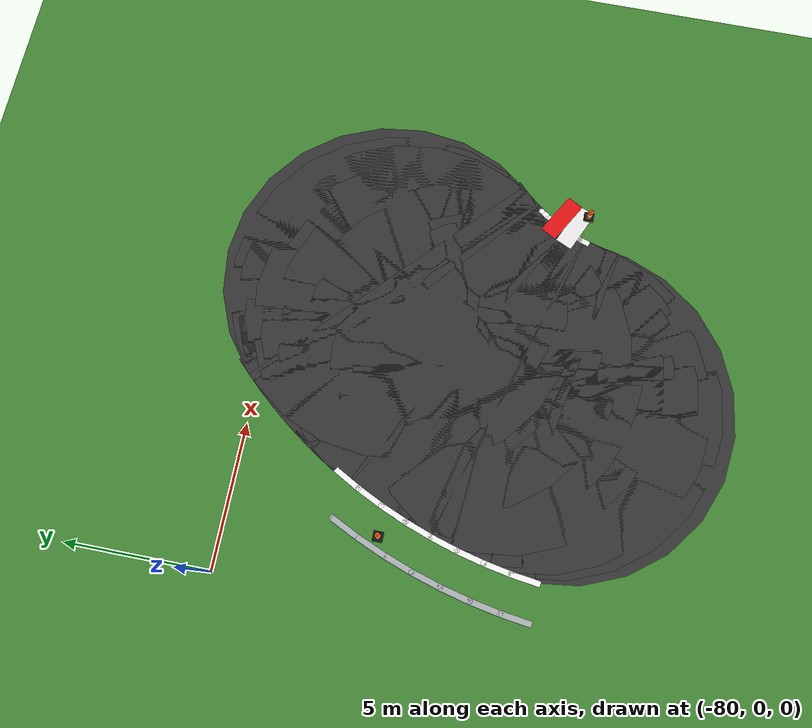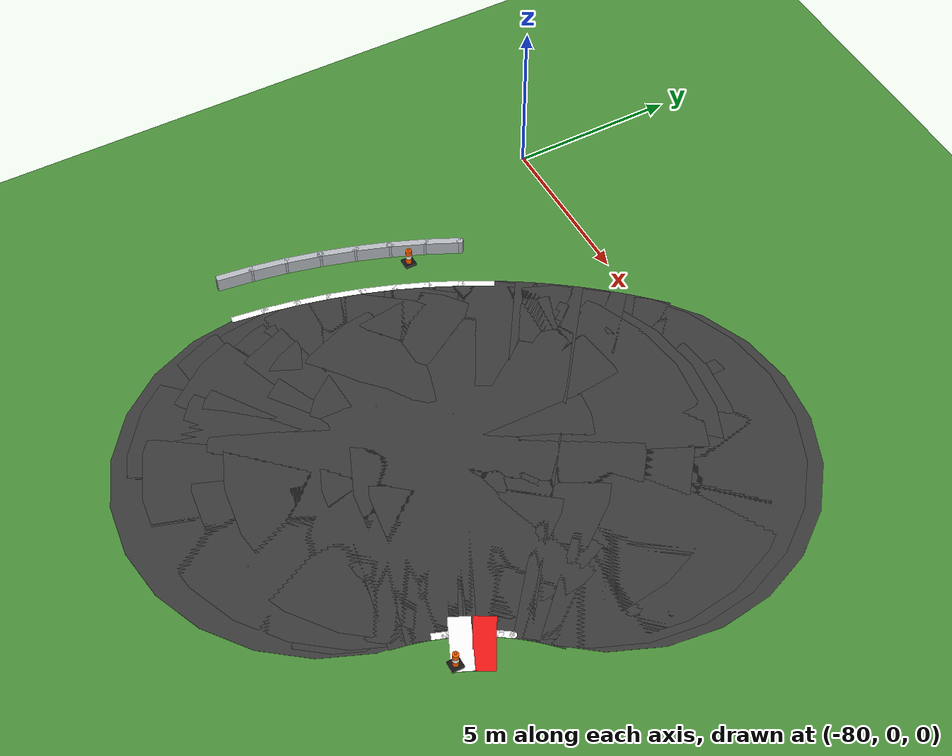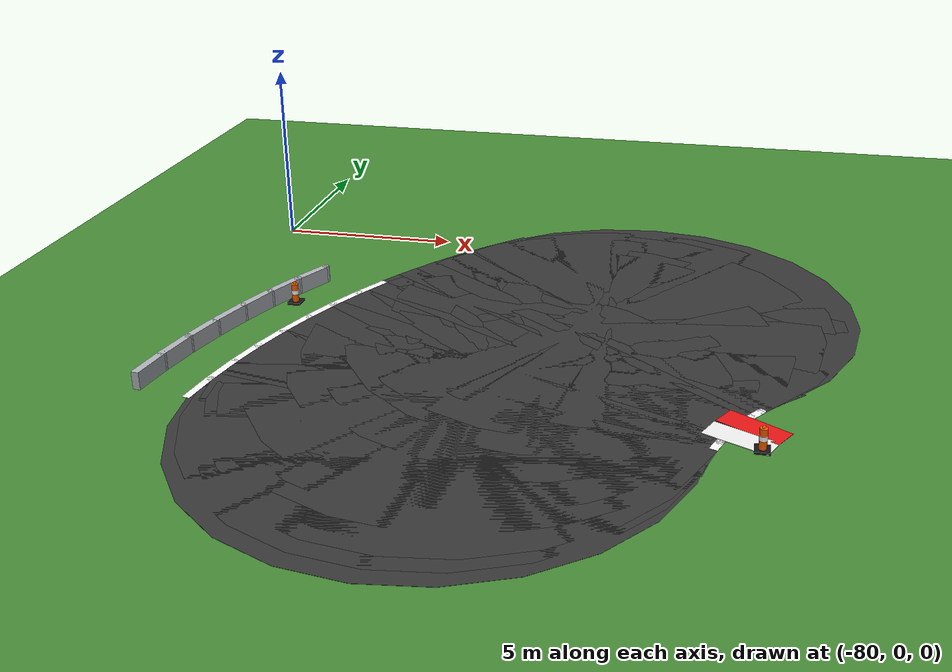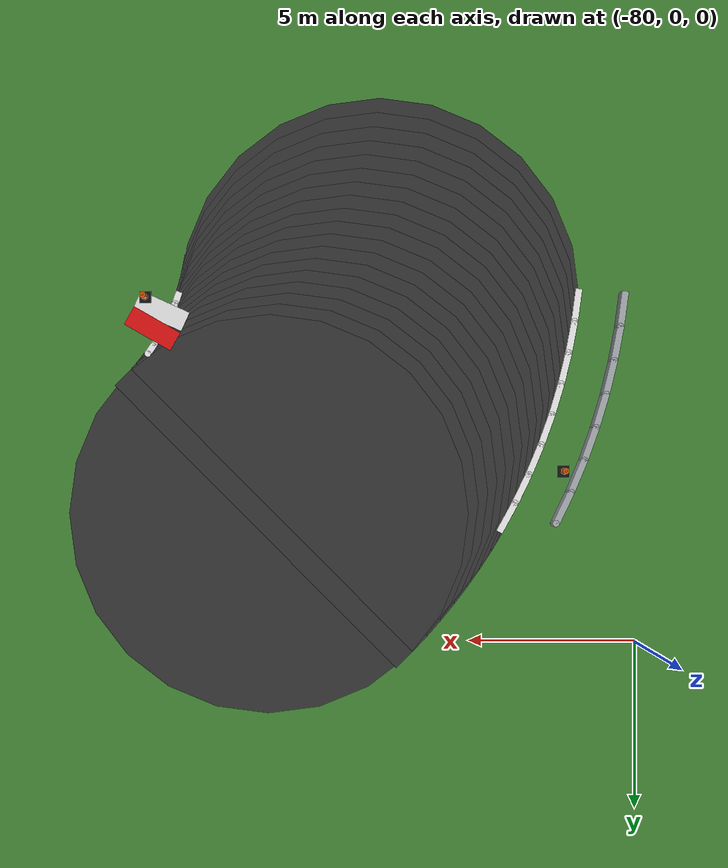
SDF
<sdf version="1.6">
 <world name="sem_silesia_ring_2026">
  <model name="ground_plane">
   <static>true</static>
   <link name="link">
    <collision name="collision">
     <geometry><plane><normal>0 0 1</normal><size>600 600</size></plane></geometry>
     <surface><friction><ode><mu>0.6</mu><mu2>0.6</mu2></ode></friction></surface>
    </collision>
    <visual name="visual">
     <geometry><plane><normal>0 0 1</normal><size>600 600</size></plane></geometry>
     <material><ambient>0.28 0.55 0.22 1</ambient><diffuse>0.28 0.55 0.22 1</diffuse></material>
    </visual>
   </link>
  </model>
  <model name="road_L_s22">
   <static>true</static>
   <pose>-68.8388 -3.6612 0.0030 0 0 3.9270</pose>
   <link name="link">
    <visual name="v">
     <geometry><box><size>0.6957 12.0000 0.0060</size></box></geometry>
     <material><ambient>0.22 0.22 0.22 1</ambient><diffuse>0.22 0.22 0.22 1</diffuse></material>
    </visual>
    <collision name="c">
     <geometry><box><size>0.6957 12.0000 0.0060</size></box></geometry>
     <surface><friction><ode><mu>0.9</mu><mu2>0.9</mu2></ode></friction></surface>
    </collision>
   </link>
  </model>
  <model name="road_L_jnt23">
   <static>true</static>
   <pose>-68.9917 -3.8168 0.0030 0 0 0</pose>
   <link name="link">
    <visual name="v">
     <geometry><cylinder><radius>6.0000</radius><length>0.0060</length></cylinder></geometry>
     <material><ambient>0.22 0.22 0.22 1</ambient><diffuse>0.22 0.22 0.22 1</diffuse></material>
    </visual>
    <collision name="c">
     <geometry><cylinder><radius>6.0000</radius><length>0.0060</length></cylinder></geometry>
     <surface><friction><ode><mu>0.9</mu><mu2>0.9</mu2></ode></friction></surface>
    </collision>
   </link>
  </model>
  <model name="road_L_s23">
   <static>true</static>
   <pose>-69.1419 -3.9750 0.0030 0 0 3.9619</pose>
   <link name="link">
    <visual name="v">
     <geometry><box><size>0.6957 12.0000 0.0060</size></box></geometry>
     <material><ambient>0.22 0.22 0.22 1</ambient><diffuse>0.22 0.22 0.22 1</diffuse></material>
    </visual>
    <collision name="c">
     <geometry><box><size>0.6957 12.0000 0.0060</size></box></geometry>
     <surface><friction><ode><mu>0.9</mu><mu2>0.9</mu2></ode></friction></surface>
    </collision>
   </link>
  </model>
  <model name="road_L_jnt24">
   <static>true</static>
   <pose>-69.2893 -4.1359 0.0030 0 0 0</pose>
   <link name="link">
    <visual name="v">
     <geometry><cylinder><radius>6.0000</radius><length>0.0060</length></cylinder></geometry>
     <material><ambient>0.22 0.22 0.22 1</ambient><diffuse>0.22 0.22 0.22 1</diffuse></material>
    </visual>
    <collision name="c">
     <geometry><cylinder><radius>6.0000</radius><length>0.0060</length></cylinder></geometry>
     <surface><friction><ode><mu>0.9</mu><mu2>0.9</mu2></ode></friction></surface>
    </collision>
   </link>
  </model>
  <model name="road_L_s24">
   <static>true</static>
   <pose>-69.4339 -4.2993 0.0030 0 0 3.9968</pose>
   <link name="link">
    <visual name="v">
     <geometry><box><size>0.6957 12.0000 0.0060</size></box></geometry>
     <material><ambient>0.22 0.22 0.22 1</ambient><diffuse>0.22 0.22 0.22 1</diffuse></material>
    </visual>
    <collision name="c">
     <geometry><box><size>0.6957 12.0000 0.0060</size></box></geometry>
     <surface><friction><ode><mu>0.9</mu><mu2>0.9</mu2></ode></friction></surface>
    </collision>
   </link>
  </model>
  <model name="road_L_jnt25">
   <static>true</static>
   <pose>-69.5756 -4.4652 0.0030 0 0 0</pose>
   <link name="link">
    <visual name="v">
     <geometry><cylinder><radius>6.0000</radius><length>0.0060</length></cylinder></geometry>
     <material><ambient>0.22 0.22 0.22 1</ambient><diffuse>0.22 0.22 0.22 1</diffuse></material>
    </visual>
    <collision name="c">
     <geometry><cylinder><radius>6.0000</radius><length>0.0060</length></cylinder></geometry>
     <surface><friction><ode><mu>0.9</mu><mu2>0.9</mu2></ode></friction></surface>
    </collision>
   </link>
  </model>
  <model name="road_L_s25">
   <static>true</static>
   <pose>-69.7143 -4.6335 0.0030 0 0 4.0317</pose>
   <link name="link">
    <visual name="v">
     <geometry><box><size>0.6957 12.0000 0.0060</size></box></geometry>
     <material><ambient>0.22 0.22 0.22 1</ambient><diffuse>0.22 0.22 0.22 1</diffuse></material>
    </visual>
    <collision name="c">
     <geometry><box><size>0.6957 12.0000 0.0060</size></box></geometry>
     <surface><friction><ode><mu>0.9</mu><mu2>0.9</mu2></ode></friction></surface>
    </collision>
   </link>
  </model>
  <model name="road_L_jnt26">
   <static>true</static>
   <pose>-69.8501 -4.8042 0.0030 0 0 0</pose>
   <link name="link">
    <visual name="v">
     <geometry><cylinder><radius>6.0000</radius><length>0.0060</length></cylinder></geometry>
     <material><ambient>0.22 0.22 0.22 1</ambient><diffuse>0.22 0.22 0.22 1</diffuse></material>
    </visual>
    <collision name="c">
     <geometry><cylinder><radius>6.0000</radius><length>0.0060</length></cylinder></geometry>
     <surface><friction><ode><mu>0.9</mu><mu2>0.9</mu2></ode></friction></surface>
    </collision>
   </link>
  </model>
  <model name="road_L_s26">
   <static>true</static>
   <pose>-69.9829 -4.9773 0.0030 0 0 4.0666</pose>
   <link name="link">
    <visual name="v">
     <geometry><box><size>0.6957 12.0000 0.0060</size></box></geometry>
     <material><ambient>0.22 0.22 0.22 1</ambient><diffuse>0.22 0.22 0.22 1</diffuse></material>
    </visual>
    <collision name="c">
     <geometry><box><size>0.6957 12.0000 0.0060</size></box></geometry>
     <surface><friction><ode><mu>0.9</mu><mu2>0.9</mu2></ode></friction></surface>
    </collision>
   </link>
  </model>
  <model name="road_L_jnt27">
   <static>true</static>
   <pose>-70.1127 -5.1527 0.0030 0 0 0</pose>
   <link name="link">
    <visual name="v">
     <geometry><cylinder><radius>6.0000</radius><length>0.0060</length></cylinder></geometry>
     <material><ambient>0.22 0.22 0.22 1</ambient><diffuse>0.22 0.22 0.22 1</diffuse></material>
    </visual>
    <collision name="c">
     <geometry><cylinder><radius>6.0000</radius><length>0.0060</length></cylinder></geometry>
     <surface><friction><ode><mu>0.9</mu><mu2>0.9</mu2></ode></friction></surface>
    </collision>
   </link>
  </model>
  <model name="road_L_s27">
   <static>true</static>
   <pose>-70.2394 -5.3303 0.0030 0 0 4.1015</pose>
   <link name="link">
    <visual name="v">
     <geometry><box><size>0.6957 12.0000 0.0060</size></box></geometry>
     <material><ambient>0.22 0.22 0.22 1</ambient><diffuse>0.22 0.22 0.22 1</diffuse></material>
    </visual>
    <collision name="c">
     <geometry><box><size>0.6957 12.0000 0.0060</size></box></geometry>
     <surface><friction><ode><mu>0.9</mu><mu2>0.9</mu2></ode></friction></surface>
    </collision>
   </link>
  </model>
  <model name="road_L_jnt28">
   <static>true</static>
   <pose>-70.3630 -5.5101 0.0030 0 0 0</pose>
   <link name="link">
    <visual name="v">
     <geometry><cylinder><radius>6.0000</radius><length>0.0060</length></cylinder></geometry>
     <material><ambient>0.22 0.22 0.22 1</ambient><diffuse>0.22 0.22 0.22 1</diffuse></material>
    </visual>
    <collision name="c">
     <geometry><cylinder><radius>6.0000</radius><length>0.0060</length></cylinder></geometry>
     <surface><friction><ode><mu>0.9</mu><mu2>0.9</mu2></ode></friction></surface>
    </collision>
   </link>
  </model>
  <model name="road_L_s28">
   <static>true</static>
   <pose>-70.4834 -5.6920 0.0030 0 0 4.1364</pose>
   <link name="link">
    <visual name="v">
     <geometry><box><size>0.6957 12.0000 0.0060</size></box></geometry>
     <material><ambient>0.22 0.22 0.22 1</ambient><diffuse>0.22 0.22 0.22 1</diffuse></material>
    </visual>
    <collision name="c">
     <geometry><box><size>0.6957 12.0000 0.0060</size></box></geometry>
     <surface><friction><ode><mu>0.9</mu><mu2>0.9</mu2></ode></friction></surface>
    </collision>
   </link>
  </model>
  <model name="road_L_jnt29">
   <static>true</static>
   <pose>-70.6006 -5.8760 0.0030 0 0 0</pose>
   <link name="link">
    <visual name="v">
     <geometry><cylinder><radius>6.0000</radius><length>0.0060</length></cylinder></geometry>
     <material><ambient>0.22 0.22 0.22 1</ambient><diffuse>0.22 0.22 0.22 1</diffuse></material>
    </visual>
    <collision name="c">
     <geometry><cylinder><radius>6.0000</radius><length>0.0060</length></cylinder></geometry>
     <surface><friction><ode><mu>0.9</mu><mu2>0.9</mu2></ode></friction></surface>
    </collision>
   </link>
  </model>
  <model name="road_L_s29">
   <static>true</static>
   <pose>-70.7146 -6.0620 0.0030 0 0 4.1713</pose>
   <link name="link">
    <visual name="v">
     <geometry><box><size>0.6957 12.0000 0.0060</size></box></geometry>
     <material><ambient>0.22 0.22 0.22 1</ambient><diffuse>0.22 0.22 0.22 1</diffuse></material>
    </visual>
    <collision name="c">
     <geometry><box><size>0.6957 12.0000 0.0060</size></box></geometry>
     <surface><friction><ode><mu>0.9</mu><mu2>0.9</mu2></ode></friction></surface>
    </collision>
   </link>
  </model>
  <model name="road_L_jnt30">
   <static>true</static>
   <pose>-70.8253 -6.2500 0.0030 0 0 0</pose>
   <link name="link">
    <visual name="v">
     <geometry><cylinder><radius>6.0000</radius><length>0.0060</length></cylinder></geometry>
     <material><ambient>0.22 0.22 0.22 1</ambient><diffuse>0.22 0.22 0.22 1</diffuse></material>
    </visual>
    <collision name="c">
     <geometry><cylinder><radius>6.0000</radius><length>0.0060</length></cylinder></geometry>
     <surface><friction><ode><mu>0.9</mu><mu2>0.9</mu2></ode></friction></surface>
    </collision>
   </link>
  </model>
  <model name="road_L_s30">
   <static>true</static>
   <pose>-70.9327 -6.4399 0.0030 0 0 4.2062</pose>
   <link name="link">
    <visual name="v">
     <geometry><box><size>0.6957 12.0000 0.0060</size></box></geometry>
     <material><ambient>0.22 0.22 0.22 1</ambient><diffuse>0.22 0.22 0.22 1</diffuse></material>
    </visual>
    <collision name="c">
     <geometry><box><size>0.6957 12.0000 0.0060</size></box></geometry>
     <surface><friction><ode><mu>0.9</mu><mu2>0.9</mu2></ode></friction></surface>
    </collision>
   </link>
  </model>
  <model name="road_L_jnt31">
   <static>true</static>
   <pose>-71.0368 -6.6316 0.0030 0 0 0</pose>
   <link name="link">
    <visual name="v">
     <geometry><cylinder><radius>6.0000</radius><length>0.0060</length></cylinder></geometry>
     <material><ambient>0.22 0.22 0.22 1</ambient><diffuse>0.22 0.22 0.22 1</diffuse></material>
    </visual>
    <collision name="c">
     <geometry><cylinder><radius>6.0000</radius><length>0.0060</length></cylinder></geometry>
     <surface><friction><ode><mu>0.9</mu><mu2>0.9</mu2></ode></friction></surface>
    </collision>
   </link>
  </model>
  <model name="road_L_s31">
   <static>true</static>
   <pose>-71.1376 -6.8251 0.0030 0 0 4.2412</pose>
   <link name="link">
    <visual name="v">
     <geometry><box><size>0.6957 12.0000 0.0060</size></box></geometry>
     <material><ambient>0.22 0.22 0.22 1</ambient><diffuse>0.22 0.22 0.22 1</diffuse></material>
    </visual>
    <collision name="c">
     <geometry><box><size>0.6957 12.0000 0.0060</size></box></geometry>
     <surface><friction><ode><mu>0.9</mu><mu2>0.9</mu2></ode></friction></surface>
    </collision>
   </link>
  </model>
  <model name="road_L_jnt32">
   <static>true</static>
   <pose>-71.2349 -7.0204 0.0030 0 0 0</pose>
   <link name="link">
    <visual name="v">
     <geometry><cylinder><radius>6.0000</radius><length>0.0060</length></cylinder></geometry>
     <material><ambient>0.22 0.22 0.22 1</ambient><diffuse>0.22 0.22 0.22 1</diffuse></material>
    </visual>
    <collision name="c">
     <geometry><cylinder><radius>6.0000</radius><length>0.0060</length></cylinder></geometry>
     <surface><friction><ode><mu>0.9</mu><mu2>0.9</mu2></ode></friction></surface>
    </collision>
   </link>
  </model>
  <model name="road_L_s32">
   <static>true</static>
   <pose>-71.3288 -7.2173 0.0030 0 0 4.2761</pose>
   <link name="link">
    <visual name="v">
     <geometry><box><size>0.6957 12.0000 0.0060</size></box></geometry>
     <material><ambient>0.22 0.22 0.22 1</ambient><diffuse>0.22 0.22 0.22 1</diffuse></material>
    </visual>
    <collision name="c">
     <geometry><box><size>0.6957 12.0000 0.0060</size></box></geometry>
     <surface><friction><ode><mu>0.9</mu><mu2>0.9</mu2></ode></friction></surface>
    </collision>
   </link>
  </model>
  <model name="road_L_jnt33">
   <static>true</static>
   <pose>-71.4193 -7.4158 0.0030 0 0 0</pose>
   <link name="link">
    <visual name="v">
     <geometry><cylinder><radius>6.0000</radius><length>0.0060</length></cylinder></geometry>
     <material><ambient>0.22 0.22 0.22 1</ambient><diffuse>0.22 0.22 0.22 1</diffuse></material>
    </visual>
    <collision name="c">
     <geometry><cylinder><radius>6.0000</radius><length>0.0060</length></cylinder></geometry>
     <surface><friction><ode><mu>0.9</mu><mu2>0.9</mu2></ode></friction></surface>
    </collision>
   </link>
  </model>
  <model name="road_L_s33">
   <static>true</static>
   <pose>-71.5063 -7.6159 0.0030 0 0 4.3110</pose>
   <link name="link">
    <visual name="v">
     <geometry><box><size>0.6957 12.0000 0.0060</size></box></geometry>
     <material><ambient>0.22 0.22 0.22 1</ambient><diffuse>0.22 0.22 0.22 1</diffuse></material>
    </visual>
    <collision name="c">
     <geometry><box><size>0.6957 12.0000 0.0060</size></box></geometry>
     <surface><friction><ode><mu>0.9</mu><mu2>0.9</mu2></ode></friction></surface>
    </collision>
   </link>
  </model>
  <model name="road_L_jnt34">
   <static>true</static>
   <pose>-71.5898 -7.8174 0.0030 0 0 0</pose>
   <link name="link">
    <visual name="v">
     <geometry><cylinder><radius>6.0000</radius><length>0.0060</length></cylinder></geometry>
     <material><ambient>0.22 0.22 0.22 1</ambient><diffuse>0.22 0.22 0.22 1</diffuse></material>
    </visual>
    <collision name="c">
     <geometry><cylinder><radius>6.0000</radius><length>0.0060</length></cylinder></geometry>
     <surface><friction><ode><mu>0.9</mu><mu2>0.9</mu2></ode></friction></surface>
    </collision>
   </link>
  </model>
  <model name="road_L_s34">
   <static>true</static>
   <pose>-71.6698 -8.0204 0.0030 0 0 4.3459</pose>
   <link name="link">
    <visual name="v">
     <geometry><box><size>0.6957 12.0000 0.0060</size></box></geometry>
     <material><ambient>0.22 0.22 0.22 1</ambient><diffuse>0.22 0.22 0.22 1</diffuse></material>
    </visual>
    <collision name="c">
     <geometry><box><size>0.6957 12.0000 0.0060</size></box></geometry>
     <surface><friction><ode><mu>0.9</mu><mu2>0.9</mu2></ode></friction></surface>
    </collision>
   </link>
  </model>
  <model name="road_L_jnt35">
   <static>true</static>
   <pose>-71.7462 -8.2247 0.0030 0 0 0</pose>
   <link name="link">
    <visual name="v">
     <geometry><cylinder><radius>6.0000</radius><length>0.0060</length></cylinder></geometry>
     <material><ambient>0.22 0.22 0.22 1</ambient><diffuse>0.22 0.22 0.22 1</diffuse></material>
    </visual>
    <collision name="c">
     <geometry><cylinder><radius>6.0000</radius><length>0.0060</length></cylinder></geometry>
     <surface><friction><ode><mu>0.9</mu><mu2>0.9</mu2></ode></friction></surface>
    </collision>
   </link>
  </model>
  <model name="road_L_s35">
   <static>true</static>
   <pose>-71.8190 -8.4304 0.0030 0 0 4.3808</pose>
   <link name="link">
    <visual name="v">
     <geometry><box><size>0.6957 12.0000 0.0060</size></box></geometry>
     <material><ambient>0.22 0.22 0.22 1</ambient><diffuse>0.22 0.22 0.22 1</diffuse></material>
    </visual>
    <collision name="c">
     <geometry><box><size>0.6957 12.0000 0.0060</size></box></geometry>
     <surface><friction><ode><mu>0.9</mu><mu2>0.9</mu2></ode></friction></surface>
    </collision>
   </link>
  </model>
  <model name="road_L_jnt36">
   <static>true</static>
   <pose>-71.8882 -8.6373 0.0030 0 0 0</pose>
   <link name="link">
    <visual name="v">
     <geometry><cylinder><radius>6.0000</radius><length>0.0060</length></cylinder></geometry>
     <material><ambient>0.22 0.22 0.22 1</ambient><diffuse>0.22 0.22 0.22 1</diffuse></material>
    </visual>
    <collision name="c">
     <geometry><cylinder><radius>6.0000</radius><length>0.0060</length></cylinder></geometry>
     <surface><friction><ode><mu>0.9</mu><mu2>0.9</mu2></ode></friction></surface>
    </collision>
   </link>
  </model>
  <model name="road_L_s36">
   <static>true</static>
   <pose>-71.9538 -8.8454 0.0030 0 0 4.4157</pose>
   <link name="link">
    <visual name="v">
     <geometry><box><size>0.6957 12.0000 0.0060</size></box></geometry>
     <material><ambient>0.22 0.22 0.22 1</ambient><diffuse>0.22 0.22 0.22 1</diffuse></material>
    </visual>
    <collision name="c">
     <geometry><box><size>0.6957 12.0000 0.0060</size></box></geometry>
     <surface><friction><ode><mu>0.9</mu><mu2>0.9</mu2></ode></friction></surface>
    </collision>
   </link>
  </model>
  <model name="road_L_jnt37">
   <static>true</static>
   <pose>-72.0158 -9.0545 0.0030 0 0 0</pose>
   <link name="link">
    <visual name="v">
     <geometry><cylinder><radius>6.0000</radius><length>0.0060</length></cylinder></geometry>
     <material><ambient>0.22 0.22 0.22 1</ambient><diffuse>0.22 0.22 0.22 1</diffuse></material>
    </visual>
    <collision name="c">
     <geometry><cylinder><radius>6.0000</radius><length>0.0060</length></cylinder></geometry>
     <surface><friction><ode><mu>0.9</mu><mu2>0.9</mu2></ode></friction></surface>
    </collision>
   </link>
  </model>
  <model name="road_L_s37">
   <static>true</static>
   <pose>-72.0741 -9.2648 0.0030 0 0 4.4506</pose>
   <link name="link">
    <visual name="v">
     <geometry><box><size>0.6957 12.0000 0.0060</size></box></geometry>
     <material><ambient>0.22 0.22 0.22 1</ambient><diffuse>0.22 0.22 0.22 1</diffuse></material>
    </visual>
    <collision name="c">
     <geometry><box><size>0.6957 12.0000 0.0060</size></box></geometry>
     <surface><friction><ode><mu>0.9</mu><mu2>0.9</mu2></ode></friction></surface>
    </collision>
   </link>
  </model>
  <model name="road_L_jnt38">
   <static>true</static>
   <pose>-72.1287 -9.4760 0.0030 0 0 0</pose>
   <link name="link">
    <visual name="v">
     <geometry><cylinder><radius>6.0000</radius><length>0.0060</length></cylinder></geometry>
     <material><ambient>0.22 0.22 0.22 1</ambient><diffuse>0.22 0.22 0.22 1</diffuse></material>
    </visual>
    <collision name="c">
     <geometry><cylinder><radius>6.0000</radius><length>0.0060</length></cylinder></geometry>
     <surface><friction><ode><mu>0.9</mu><mu2>0.9</mu2></ode></friction></surface>
    </collision>
   </link>
  </model>
  <model name="road_L_s38">
   <static>true</static>
   <pose>-72.1796 -9.6881 0.0030 0 0 4.4855</pose>
   <link name="link">
    <visual name="v">
     <geometry><box><size>0.6957 12.0000 0.0060</size></box></geometry>
     <material><ambient>0.22 0.22 0.22 1</ambient><diffuse>0.22 0.22 0.22 1</diffuse></material>
    </visual>
    <collision name="c">
     <geometry><box><size>0.6957 12.0000 0.0060</size></box></geometry>
     <surface><friction><ode><mu>0.9</mu><mu2>0.9</mu2></ode></friction></surface>
    </collision>
   </link>
  </model>
  <model name="road_L_jnt39">
   <static>true</static>
   <pose>-72.2268 -9.9011 0.0030 0 0 0</pose>
   <link name="link">
    <visual name="v">
     <geometry><cylinder><radius>6.0000</radius><length>0.0060</length></cylinder></geometry>
     <material><ambient>0.22 0.22 0.22 1</ambient><diffuse>0.22 0.22 0.22 1</diffuse></material>
    </visual>
    <collision name="c">
     <geometry><cylinder><radius>6.0000</radius><length>0.0060</length></cylinder></geometry>
     <surface><friction><ode><mu>0.9</mu><mu2>0.9</mu2></ode></friction></surface>
    </collision>
   </link>
  </model>
  <model name="road_L_s39">
   <static>true</static>
   <pose>-72.2703 -10.1149 0.0030 0 0 4.5204</pose>
   <link name="link">
    <visual name="v">
     <geometry><box><size>0.6957 12.0000 0.0060</size></box></geometry>
     <material><ambient>0.22 0.22 0.22 1</ambient><diffuse>0.22 0.22 0.22 1</diffuse></material>
    </visual>
    <collision name="c">
     <geometry><box><size>0.6957 12.0000 0.0060</size></box></geometry>
     <surface><friction><ode><mu>0.9</mu><mu2>0.9</mu2></ode></friction></surface>
    </collision>
   </link>
  </model>
  <model name="road_L_jnt40">
   <static>true</static>
   <pose>-72.3101 -10.3294 0.0030 0 0 0</pose>
   <link name="link">
    <visual name="v">
     <geometry><cylinder><radius>6.0000</radius><length>0.0060</length></cylinder></geometry>
     <material><ambient>0.22 0.22 0.22 1</ambient><diffuse>0.22 0.22 0.22 1</diffuse></material>
    </visual>
    <collision name="c">
     <geometry><cylinder><radius>6.0000</radius><length>0.0060</length></cylinder></geometry>
     <surface><friction><ode><mu>0.9</mu><mu2>0.9</mu2></ode></friction></surface>
    </collision>
   </link>
  </model>
  <model name="wl_Lo_s20">
   <static>true</static>
   <pose>-76.1702 -3.7203 0.0050 0 0 4.2150</pose>
   <link name="link">
    <visual name="v">
     <geometry><box><size>1.0185 0.2000 0.0040</size></box></geometry>
     <material><ambient>1 1 1 1</ambient><diffuse>1 1 1 1</diffuse></material>
    </visual>
    <collision name="c">
     <geometry><box><size>1.0185 0.2000 0.0040</size></box></geometry>
     <surface><friction><ode><mu>0.9</mu><mu2>0.9</mu2></ode></friction></surface>
    </collision>
   </link>
  </model>
  <model name="wl_Lo_jnt21">
   <static>true</static>
   <pose>-76.3945 -4.1466 0.0050 0 0 0</pose>
   <link name="link">
    <visual name="v">
     <geometry><cylinder><radius>0.1000</radius><length>0.0040</length></cylinder></geometry>
     <material><ambient>1 1 1 1</ambient><diffuse>1 1 1 1</diffuse></material>
    </visual>
    <collision name="c">
     <geometry><cylinder><radius>0.1000</radius><length>0.0040</length></cylinder></geometry>
     <surface><friction><ode><mu>0.9</mu><mu2>0.9</mu2></ode></friction></surface>
    </collision>
   </link>
  </model>
  <model name="wl_Lo_s21">
   <static>true</static>
   <pose>-76.6076 -4.5786 0.0050 0 0 4.2673</pose>
   <link name="link">
    <visual name="v">
     <geometry><box><size>1.0185 0.2000 0.0040</size></box></geometry>
     <material><ambient>1 1 1 1</ambient><diffuse>1 1 1 1</diffuse></material>
    </visual>
    <collision name="c">
     <geometry><box><size>1.0185 0.2000 0.0040</size></box></geometry>
     <surface><friction><ode><mu>0.9</mu><mu2>0.9</mu2></ode></friction></surface>
    </collision>
   </link>
  </model>
  <model name="wl_Lo_jnt22">
   <static>true</static>
   <pose>-76.8092 -5.0160 0.0050 0 0 0</pose>
   <link name="link">
    <visual name="v">
     <geometry><cylinder><radius>0.1000</radius><length>0.0040</length></cylinder></geometry>
     <material><ambient>1 1 1 1</ambient><diffuse>1 1 1 1</diffuse></material>
    </visual>
    <collision name="c">
     <geometry><cylinder><radius>0.1000</radius><length>0.0040</length></cylinder></geometry>
     <surface><friction><ode><mu>0.9</mu><mu2>0.9</mu2></ode></friction></surface>
    </collision>
   </link>
  </model>
  <model name="wl_Lo_s22">
   <static>true</static>
   <pose>-76.9994 -5.4586 0.0050 0 0 4.3197</pose>
   <link name="link">
    <visual name="v">
     <geometry><box><size>1.0185 0.2000 0.0040</size></box></geometry>
     <material><ambient>1 1 1 1</ambient><diffuse>1 1 1 1</diffuse></material>
    </visual>
    <collision name="c">
     <geometry><box><size>1.0185 0.2000 0.0040</size></box></geometry>
     <surface><friction><ode><mu>0.9</mu><mu2>0.9</mu2></ode></friction></surface>
    </collision>
   </link>
  </model>
  <model name="wl_Lo_jnt23">
   <static>true</static>
   <pose>-77.1779 -5.9060 0.0050 0 0 0</pose>
   <link name="link">
    <visual name="v">
     <geometry><cylinder><radius>0.1000</radius><length>0.0040</length></cylinder></geometry>
     <material><ambient>1 1 1 1</ambient><diffuse>1 1 1 1</diffuse></material>
    </visual>
    <collision name="c">
     <geometry><cylinder><radius>0.1000</radius><length>0.0040</length></cylinder></geometry>
     <surface><friction><ode><mu>0.9</mu><mu2>0.9</mu2></ode></friction></surface>
    </collision>
   </link>
  </model>
  <model name="wl_Lo_s23">
   <static>true</static>
   <pose>-77.3446 -6.3580 0.0050 0 0 4.3720</pose>
   <link name="link">
    <visual name="v">
     <geometry><box><size>1.0185 0.2000 0.0040</size></box></geometry>
     <material><ambient>1 1 1 1</ambient><diffuse>1 1 1 1</diffuse></material>
    </visual>
    <collision name="c">
     <geometry><box><size>1.0185 0.2000 0.0040</size></box></geometry>
     <surface><friction><ode><mu>0.9</mu><mu2>0.9</mu2></ode></friction></surface>
    </collision>
   </link>
  </model>
  <model name="wl_Lo_jnt24">
   <static>true</static>
   <pose>-77.4994 -6.8141 0.0050 0 0 0</pose>
   <link name="link">
    <visual name="v">
     <geometry><cylinder><radius>0.1000</radius><length>0.0040</length></cylinder></geometry>
     <material><ambient>1 1 1 1</ambient><diffuse>1 1 1 1</diffuse></material>
    </visual>
    <collision name="c">
     <geometry><cylinder><radius>0.1000</radius><length>0.0040</length></cylinder></geometry>
     <surface><friction><ode><mu>0.9</mu><mu2>0.9</mu2></ode></friction></surface>
    </collision>
   </link>
  </model>
  <model name="wl_Lo_s24">
   <static>true</static>
   <pose>-77.6423 -7.2741 0.0050 0 0 4.4244</pose>
   <link name="link">
    <visual name="v">
     <geometry><box><size>1.0185 0.2000 0.0040</size></box></geometry>
     <material><ambient>1 1 1 1</ambient><diffuse>1 1 1 1</diffuse></material>
    </visual>
    <collision name="c">
     <geometry><box><size>1.0185 0.2000 0.0040</size></box></geometry>
     <surface><friction><ode><mu>0.9</mu><mu2>0.9</mu2></ode></friction></surface>
    </collision>
   </link>
  </model>
  <model name="wl_Lo_jnt25">
   <static>true</static>
   <pose>-77.7730 -7.7377 0.0050 0 0 0</pose>
   <link name="link">
    <visual name="v">
     <geometry><cylinder><radius>0.1000</radius><length>0.0040</length></cylinder></geometry>
     <material><ambient>1 1 1 1</ambient><diffuse>1 1 1 1</diffuse></material>
    </visual>
    <collision name="c">
     <geometry><cylinder><radius>0.1000</radius><length>0.0040</length></cylinder></geometry>
     <surface><friction><ode><mu>0.9</mu><mu2>0.9</mu2></ode></friction></surface>
    </collision>
   </link>
  </model>
  <model name="wl_Lo_s25">
   <static>true</static>
   <pose>-77.8916 -8.2046 0.0050 0 0 4.4768</pose>
   <link name="link">
    <visual name="v">
     <geometry><box><size>1.0185 0.2000 0.0040</size></box></geometry>
     <material><ambient>1 1 1 1</ambient><diffuse>1 1 1 1</diffuse></material>
    </visual>
    <collision name="c">
     <geometry><box><size>1.0185 0.2000 0.0040</size></box></geometry>
     <surface><friction><ode><mu>0.9</mu><mu2>0.9</mu2></ode></friction></surface>
    </collision>
   </link>
  </model>
  <model name="wl_Lo_jnt26">
   <static>true</static>
   <pose>-77.9979 -8.6744 0.0050 0 0 0</pose>
   <link name="link">
    <visual name="v">
     <geometry><cylinder><radius>0.1000</radius><length>0.0040</length></cylinder></geometry>
     <material><ambient>1 1 1 1</ambient><diffuse>1 1 1 1</diffuse></material>
    </visual>
    <collision name="c">
     <geometry><cylinder><radius>0.1000</radius><length>0.0040</length></cylinder></geometry>
     <surface><friction><ode><mu>0.9</mu><mu2>0.9</mu2></ode></friction></surface>
    </collision>
   </link>
  </model>
  <model name="wl_Lo_s26">
   <static>true</static>
   <pose>-78.0919 -9.1469 0.0050 0 0 4.5291</pose>
   <link name="link">
    <visual name="v">
     <geometry><box><size>1.0185 0.2000 0.0040</size></box></geometry>
     <material><ambient>1 1 1 1</ambient><diffuse>1 1 1 1</diffuse></material>
    </visual>
    <collision name="c">
     <geometry><box><size>1.0185 0.2000 0.0040</size></box></geometry>
     <surface><friction><ode><mu>0.9</mu><mu2>0.9</mu2></ode></friction></surface>
    </collision>
   </link>
  </model>
  <model name="wl_Lo_jnt27">
   <static>true</static>
   <pose>-78.1735 -9.6216 0.0050 0 0 0</pose>
   <link name="link">
    <visual name="v">
     <geometry><cylinder><radius>0.1000</radius><length>0.0040</length></cylinder></geometry>
     <material><ambient>1 1 1 1</ambient><diffuse>1 1 1 1</diffuse></material>
    </visual>
    <collision name="c">
     <geometry><cylinder><radius>0.1000</radius><length>0.0040</length></cylinder></geometry>
     <surface><friction><ode><mu>0.9</mu><mu2>0.9</mu2></ode></friction></surface>
    </collision>
   </link>
  </model>
  <model name="wl_Lo_s27">
   <static>true</static>
   <pose>-78.2426 -10.0983 0.0050 0 0 4.5815</pose>
   <link name="link">
    <visual name="v">
     <geometry><box><size>1.0185 0.2000 0.0040</size></box></geometry>
     <material><ambient>1 1 1 1</ambient><diffuse>1 1 1 1</diffuse></material>
    </visual>
    <collision name="c">
     <geometry><box><size>1.0185 0.2000 0.0040</size></box></geometry>
     <surface><friction><ode><mu>0.9</mu><mu2>0.9</mu2></ode></friction></surface>
    </collision>
   </link>
  </model>
  <model name="wl_Li_jnt18">
   <static>true</static>
   <pose>-65.3395 -8.6206 0.0050 0 0 0</pose>
   <link name="link">
    <visual name="v">
     <geometry><cylinder><radius>0.1000</radius><length>0.0040</length></cylinder></geometry>
     <material><ambient>1 1 1 1</ambient><diffuse>1 1 1 1</diffuse></material>
    </visual>
    <collision name="c">
     <geometry><cylinder><radius>0.1000</radius><length>0.0040</length></cylinder></geometry>
     <surface><friction><ode><mu>0.9</mu><mu2>0.9</mu2></ode></friction></surface>
    </collision>
   </link>
  </model>
  <model name="wl_Li_s18">
   <static>true</static>
   <pose>-65.4392 -8.7617 0.0050 0 0 4.1103</pose>
   <link name="link">
    <visual name="v">
     <geometry><box><size>0.4008 0.2000 0.0040</size></box></geometry>
     <material><ambient>1 1 1 1</ambient><diffuse>1 1 1 1</diffuse></material>
    </visual>
    <collision name="c">
     <geometry><box><size>0.4008 0.2000 0.0040</size></box></geometry>
     <surface><friction><ode><mu>0.9</mu><mu2>0.9</mu2></ode></friction></surface>
    </collision>
   </link>
  </model>
  <model name="wl_Li_jnt19">
   <static>true</static>
   <pose>-65.5352 -8.9054 0.0050 0 0 0</pose>
   <link name="link">
    <visual name="v">
     <geometry><cylinder><radius>0.1000</radius><length>0.0040</length></cylinder></geometry>
     <material><ambient>1 1 1 1</ambient><diffuse>1 1 1 1</diffuse></material>
    </visual>
    <collision name="c">
     <geometry><cylinder><radius>0.1000</radius><length>0.0040</length></cylinder></geometry>
     <surface><friction><ode><mu>0.9</mu><mu2>0.9</mu2></ode></friction></surface>
    </collision>
   </link>
  </model>
  <model name="wl_Li_s19">
   <static>true</static>
   <pose>-65.6274 -9.0515 0.0050 0 0 4.1626</pose>
   <link name="link">
    <visual name="v">
     <geometry><box><size>0.4008 0.2000 0.0040</size></box></geometry>
     <material><ambient>1 1 1 1</ambient><diffuse>1 1 1 1</diffuse></material>
    </visual>
    <collision name="c">
     <geometry><box><size>0.4008 0.2000 0.0040</size></box></geometry>
     <surface><friction><ode><mu>0.9</mu><mu2>0.9</mu2></ode></friction></surface>
    </collision>
   </link>
  </model>
  <model name="wl_Li_jnt20">
   <static>true</static>
   <pose>-65.7158 -9.2000 0.0050 0 0 0</pose>
   <link name="link">
    <visual name="v">
     <geometry><cylinder><radius>0.1000</radius><length>0.0040</length></cylinder></geometry>
     <material><ambient>1 1 1 1</ambient><diffuse>1 1 1 1</diffuse></material>
    </visual>
    <collision name="c">
     <geometry><cylinder><radius>0.1000</radius><length>0.0040</length></cylinder></geometry>
     <surface><friction><ode><mu>0.9</mu><mu2>0.9</mu2></ode></friction></surface>
    </collision>
   </link>
  </model>
  <model name="wl_Li_s20">
   <static>true</static>
   <pose>-65.8002 -9.3508 0.0050 0 0 4.2150</pose>
   <link name="link">
    <visual name="v">
     <geometry><box><size>0.4008 0.2000 0.0040</size></box></geometry>
     <material><ambient>1 1 1 1</ambient><diffuse>1 1 1 1</diffuse></material>
    </visual>
    <collision name="c">
     <geometry><box><size>0.4008 0.2000 0.0040</size></box></geometry>
     <surface><friction><ode><mu>0.9</mu><mu2>0.9</mu2></ode></friction></surface>
    </collision>
   </link>
  </model>
  <model name="wl_Li_jnt21">
   <static>true</static>
   <pose>-65.8806 -9.5037 0.0050 0 0 0</pose>
   <link name="link">
    <visual name="v">
     <geometry><cylinder><radius>0.1000</radius><length>0.0040</length></cylinder></geometry>
     <material><ambient>1 1 1 1</ambient><diffuse>1 1 1 1</diffuse></material>
    </visual>
    <collision name="c">
     <geometry><cylinder><radius>0.1000</radius><length>0.0040</length></cylinder></geometry>
     <surface><friction><ode><mu>0.9</mu><mu2>0.9</mu2></ode></friction></surface>
    </collision>
   </link>
  </model>
  <model name="wl_Li_s21">
   <static>true</static>
   <pose>-65.9571 -9.6586 0.0050 0 0 4.2673</pose>
   <link name="link">
    <visual name="v">
     <geometry><box><size>0.4008 0.2000 0.0040</size></box></geometry>
     <material><ambient>1 1 1 1</ambient><diffuse>1 1 1 1</diffuse></material>
    </visual>
    <collision name="c">
     <geometry><box><size>0.4008 0.2000 0.0040</size></box></geometry>
     <surface><friction><ode><mu>0.9</mu><mu2>0.9</mu2></ode></friction></surface>
    </collision>
   </link>
  </model>
  <model name="wl_Li_jnt22">
   <static>true</static>
   <pose>-66.0294 -9.8155 0.0050 0 0 0</pose>
   <link name="link">
    <visual name="v">
     <geometry><cylinder><radius>0.1000</radius><length>0.0040</length></cylinder></geometry>
     <material><ambient>1 1 1 1</ambient><diffuse>1 1 1 1</diffuse></material>
    </visual>
    <collision name="c">
     <geometry><cylinder><radius>0.1000</radius><length>0.0040</length></cylinder></geometry>
     <surface><friction><ode><mu>0.9</mu><mu2>0.9</mu2></ode></friction></surface>
    </collision>
   </link>
  </model>
  <model name="wl_Li_s22">
   <static>true</static>
   <pose>-66.0976 -9.9743 0.0050 0 0 4.3197</pose>
   <link name="link">
    <visual name="v">
     <geometry><box><size>0.4008 0.2000 0.0040</size></box></geometry>
     <material><ambient>1 1 1 1</ambient><diffuse>1 1 1 1</diffuse></material>
    </visual>
    <collision name="c">
     <geometry><box><size>0.4008 0.2000 0.0040</size></box></geometry>
     <surface><friction><ode><mu>0.9</mu><mu2>0.9</mu2></ode></friction></surface>
    </collision>
   </link>
  </model>
  <model name="wl_Li_jnt23">
   <static>true</static>
   <pose>-66.1616 -10.1348 0.0050 0 0 0</pose>
   <link name="link">
    <visual name="v">
     <geometry><cylinder><radius>0.1000</radius><length>0.0040</length></cylinder></geometry>
     <material><ambient>1 1 1 1</ambient><diffuse>1 1 1 1</diffuse></material>
    </visual>
    <collision name="c">
     <geometry><cylinder><radius>0.1000</radius><length>0.0040</length></cylinder></geometry>
     <surface><friction><ode><mu>0.9</mu><mu2>0.9</mu2></ode></friction></surface>
    </collision>
   </link>
  </model>
  <model name="wl_Li_s23">
   <static>true</static>
   <pose>-66.2214 -10.2969 0.0050 0 0 4.3720</pose>
   <link name="link">
    <visual name="v">
     <geometry><box><size>0.4008 0.2000 0.0040</size></box></geometry>
     <material><ambient>1 1 1 1</ambient><diffuse>1 1 1 1</diffuse></material>
    </visual>
    <collision name="c">
     <geometry><box><size>0.4008 0.2000 0.0040</size></box></geometry>
     <surface><friction><ode><mu>0.9</mu><mu2>0.9</mu2></ode></friction></surface>
    </collision>
   </link>
  </model>
  <model name="kL_in_k4">
   <static>true</static>
   <pose>-65.4724 -9.3786 0.0120 0 0 4.1940</pose>
   <link name="link">
    <visual name="v">
     <geometry><box><size>0.6135 1.6000 0.0120</size></box></geometry>
     <material><ambient>0.92 0.08 0.08 1</ambient><diffuse>0.92 0.08 0.08 1</diffuse></material>
    </visual>
    <collision name="c">
     <geometry><box><size>0.6135 1.6000 0.0120</size></box></geometry>
     <surface><friction><ode><mu>0.9</mu><mu2>0.9</mu2></ode></friction></surface>
    </collision>
   </link>
  </model>
  <model name="kL_in_k5">
   <static>true</static>
   <pose>-65.7418 -9.9075 0.0120 0 0 4.2883</pose>
   <link name="link">
    <visual name="v">
     <geometry><box><size>0.6135 1.6000 0.0120</size></box></geometry>
     <material><ambient>0.96 0.96 0.96 1</ambient><diffuse>0.96 0.96 0.96 1</diffuse></material>
    </visual>
    <collision name="c">
     <geometry><box><size>0.6135 1.6000 0.0120</size></box></geometry>
     <surface><friction><ode><mu>0.9</mu><mu2>0.9</mu2></ode></friction></surface>
    </collision>
   </link>
  </model>
  <model name="arm_Lo_jnt21">
   <static>true</static>
   <pose>-77.5528 -3.5564 0.2250 0 0 0</pose>
   <link name="link">
    <visual name="v">
     <geometry><cylinder><radius>0.1000</radius><length>0.4500</length></cylinder></geometry>
     <material><ambient>0.70 0.72 0.74 1</ambient><diffuse>0.70 0.72 0.74 1</diffuse></material>
    </visual>
    <collision name="c">
     <geometry><cylinder><radius>0.1000</radius><length>0.4500</length></cylinder></geometry>
     <surface><friction><ode><mu>0.9</mu><mu2>0.9</mu2></ode></friction></surface>
    </collision>
   </link>
  </model>
  <model name="arm_Lo_s21">
   <static>true</static>
   <pose>-77.7809 -4.0189 0.2250 0 0 4.2673</pose>
   <link name="link">
    <visual name="v">
     <geometry><box><size>1.0866 0.2000 0.4500</size></box></geometry>
     <material><ambient>0.70 0.72 0.74 1</ambient><diffuse>0.70 0.72 0.74 1</diffuse></material>
    </visual>
    <collision name="c">
     <geometry><box><size>1.0866 0.2000 0.4500</size></box></geometry>
     <surface><friction><ode><mu>0.9</mu><mu2>0.9</mu2></ode></friction></surface>
    </collision>
   </link>
  </model>
  <model name="arm_Lo_jnt22">
   <static>true</static>
   <pose>-77.9968 -4.4873 0.2250 0 0 0</pose>
   <link name="link">
    <visual name="v">
     <geometry><cylinder><radius>0.1000</radius><length>0.4500</length></cylinder></geometry>
     <material><ambient>0.70 0.72 0.74 1</ambient><diffuse>0.70 0.72 0.74 1</diffuse></material>
    </visual>
    <collision name="c">
     <geometry><cylinder><radius>0.1000</radius><length>0.4500</length></cylinder></geometry>
     <surface><friction><ode><mu>0.9</mu><mu2>0.9</mu2></ode></friction></surface>
    </collision>
   </link>
  </model>
  <model name="arm_Lo_s22">
   <static>true</static>
   <pose>-78.2004 -4.9611 0.2250 0 0 4.3197</pose>
   <link name="link">
    <visual name="v">
     <geometry><box><size>1.0866 0.2000 0.4500</size></box></geometry>
     <material><ambient>0.70 0.72 0.74 1</ambient><diffuse>0.70 0.72 0.74 1</diffuse></material>
    </visual>
    <collision name="c">
     <geometry><box><size>1.0866 0.2000 0.4500</size></box></geometry>
     <surface><friction><ode><mu>0.9</mu><mu2>0.9</mu2></ode></friction></surface>
    </collision>
   </link>
  </model>
  <model name="arm_Lo_jnt23">
   <static>true</static>
   <pose>-78.3915 -5.4402 0.2250 0 0 0</pose>
   <link name="link">
    <visual name="v">
     <geometry><cylinder><radius>0.1000</radius><length>0.4500</length></cylinder></geometry>
     <material><ambient>0.70 0.72 0.74 1</ambient><diffuse>0.70 0.72 0.74 1</diffuse></material>
    </visual>
    <collision name="c">
     <geometry><cylinder><radius>0.1000</radius><length>0.4500</length></cylinder></geometry>
     <surface><friction><ode><mu>0.9</mu><mu2>0.9</mu2></ode></friction></surface>
    </collision>
   </link>
  </model>
  <model name="arm_Lo_s23">
   <static>true</static>
   <pose>-78.5700 -5.9240 0.2250 0 0 4.3720</pose>
   <link name="link">
    <visual name="v">
     <geometry><box><size>1.0866 0.2000 0.4500</size></box></geometry>
     <material><ambient>0.70 0.72 0.74 1</ambient><diffuse>0.70 0.72 0.74 1</diffuse></material>
    </visual>
    <collision name="c">
     <geometry><box><size>1.0866 0.2000 0.4500</size></box></geometry>
     <surface><friction><ode><mu>0.9</mu><mu2>0.9</mu2></ode></friction></surface>
    </collision>
   </link>
  </model>
  <model name="arm_Lo_jnt24">
   <static>true</static>
   <pose>-78.7358 -6.4124 0.2250 0 0 0</pose>
   <link name="link">
    <visual name="v">
     <geometry><cylinder><radius>0.1000</radius><length>0.4500</length></cylinder></geometry>
     <material><ambient>0.70 0.72 0.74 1</ambient><diffuse>0.70 0.72 0.74 1</diffuse></material>
    </visual>
    <collision name="c">
     <geometry><cylinder><radius>0.1000</radius><length>0.4500</length></cylinder></geometry>
     <surface><friction><ode><mu>0.9</mu><mu2>0.9</mu2></ode></friction></surface>
    </collision>
   </link>
  </model>
  <model name="arm_Lo_s24">
   <static>true</static>
   <pose>-78.8887 -6.9049 0.2250 0 0 4.4244</pose>
   <link name="link">
    <visual name="v">
     <geometry><box><size>1.0866 0.2000 0.4500</size></box></geometry>
     <material><ambient>0.70 0.72 0.74 1</ambient><diffuse>0.70 0.72 0.74 1</diffuse></material>
    </visual>
    <collision name="c">
     <geometry><box><size>1.0866 0.2000 0.4500</size></box></geometry>
     <surface><friction><ode><mu>0.9</mu><mu2>0.9</mu2></ode></friction></surface>
    </collision>
   </link>
  </model>
  <model name="arm_Lo_jnt25">
   <static>true</static>
   <pose>-79.0287 -7.4013 0.2250 0 0 0</pose>
   <link name="link">
    <visual name="v">
     <geometry><cylinder><radius>0.1000</radius><length>0.4500</length></cylinder></geometry>
     <material><ambient>0.70 0.72 0.74 1</ambient><diffuse>0.70 0.72 0.74 1</diffuse></material>
    </visual>
    <collision name="c">
     <geometry><cylinder><radius>0.1000</radius><length>0.4500</length></cylinder></geometry>
     <surface><friction><ode><mu>0.9</mu><mu2>0.9</mu2></ode></friction></surface>
    </collision>
   </link>
  </model>
  <model name="arm_Lo_s25">
   <static>true</static>
   <pose>-79.1557 -7.9011 0.2250 0 0 4.4768</pose>
   <link name="link">
    <visual name="v">
     <geometry><box><size>1.0866 0.2000 0.4500</size></box></geometry>
     <material><ambient>0.70 0.72 0.74 1</ambient><diffuse>0.70 0.72 0.74 1</diffuse></material>
    </visual>
    <collision name="c">
     <geometry><box><size>1.0866 0.2000 0.4500</size></box></geometry>
     <surface><friction><ode><mu>0.9</mu><mu2>0.9</mu2></ode></friction></surface>
    </collision>
   </link>
  </model>
  <model name="arm_Lo_jnt26">
   <static>true</static>
   <pose>-79.2695 -8.4041 0.2250 0 0 0</pose>
   <link name="link">
    <visual name="v">
     <geometry><cylinder><radius>0.1000</radius><length>0.4500</length></cylinder></geometry>
     <material><ambient>0.70 0.72 0.74 1</ambient><diffuse>0.70 0.72 0.74 1</diffuse></material>
    </visual>
    <collision name="c">
     <geometry><cylinder><radius>0.1000</radius><length>0.4500</length></cylinder></geometry>
     <surface><friction><ode><mu>0.9</mu><mu2>0.9</mu2></ode></friction></surface>
    </collision>
   </link>
  </model>
  <model name="arm_Lo_s26">
   <static>true</static>
   <pose>-79.3701 -8.9100 0.2250 0 0 4.5291</pose>
   <link name="link">
    <visual name="v">
     <geometry><box><size>1.0866 0.2000 0.4500</size></box></geometry>
     <material><ambient>0.70 0.72 0.74 1</ambient><diffuse>0.70 0.72 0.74 1</diffuse></material>
    </visual>
    <collision name="c">
     <geometry><box><size>1.0866 0.2000 0.4500</size></box></geometry>
     <surface><friction><ode><mu>0.9</mu><mu2>0.9</mu2></ode></friction></surface>
    </collision>
   </link>
  </model>
  <model name="arm_Lo_jnt27">
   <static>true</static>
   <pose>-79.4575 -9.4182 0.2250 0 0 0</pose>
   <link name="link">
    <visual name="v">
     <geometry><cylinder><radius>0.1000</radius><length>0.4500</length></cylinder></geometry>
     <material><ambient>0.70 0.72 0.74 1</ambient><diffuse>0.70 0.72 0.74 1</diffuse></material>
    </visual>
    <collision name="c">
     <geometry><cylinder><radius>0.1000</radius><length>0.4500</length></cylinder></geometry>
     <surface><friction><ode><mu>0.9</mu><mu2>0.9</mu2></ode></friction></surface>
    </collision>
   </link>
  </model>
  <model name="arm_Lo_s27">
   <static>true</static>
   <pose>-79.5315 -9.9286 0.2250 0 0 4.5815</pose>
   <link name="link">
    <visual name="v">
     <geometry><box><size>1.0866 0.2000 0.4500</size></box></geometry>
     <material><ambient>0.70 0.72 0.74 1</ambient><diffuse>0.70 0.72 0.74 1</diffuse></material>
    </visual>
    <collision name="c">
     <geometry><box><size>1.0866 0.2000 0.4500</size></box></geometry>
     <surface><friction><ode><mu>0.9</mu><mu2>0.9</mu2></ode></friction></surface>
    </collision>
   </link>
  </model>
  <model name="cn_Lo_3">
   <static>true</static>
   <pose>-77.8309 -5.1142 0 0 0 0</pose>
   <link name="link">
    <visual name="base">
     <pose>0 0 0.03 0 0 0</pose>
     <geometry><box><size>0.35 0.35 0.06</size></box></geometry>
     <material><ambient>0.08 0.08 0.08 1</ambient><diffuse>0.08 0.08 0.08 1</diffuse></material>
    </visual>
    <visual name="body">
     <pose>0 0 0.30 0 0 0</pose>
     <geometry><cylinder><radius>0.09</radius><length>0.50</length></cylinder></geometry>
     <material><ambient>1.0 0.38 0.0 1</ambient><diffuse>1.0 0.38 0.0 1</diffuse></material>
    </visual>
    <visual name="stripe">
     <pose>0 0 0.32 0 0 0</pose>
     <geometry><cylinder><radius>0.095</radius><length>0.12</length></cylinder></geometry>
     <material><ambient>1 1 1 1</ambient><diffuse>1 1 1 1</diffuse></material>
    </visual>
    <visual name="tip">
     <pose>0 0 0.57 0 0 0</pose>
     <geometry><sphere><radius>0.04</radius></sphere></geometry>
     <material><ambient>1.0 0.38 0.0 1</ambient><diffuse>1.0 0.38 0.0 1</diffuse></material>
    </visual>
    <collision name="c">
     <pose>0 0 0.28 0 0 0</pose>
     <geometry><cylinder><radius>0.09</radius><length>0.56</length></cylinder></geometry>
    </collision>
   </link>
  </model>
  <model name="cn_Li_3">
   <static>true</static>
   <pose>-65.2661 -10.3187 0 0 0 0</pose>
   <link name="link">
    <visual name="base">
     <pose>0 0 0.03 0 0 0</pose>
     <geometry><box><size>0.35 0.35 0.06</size></box></geometry>
     <material><ambient>0.08 0.08 0.08 1</ambient><diffuse>0.08 0.08 0.08 1</diffuse></material>
    </visual>
    <visual name="body">
     <pose>0 0 0.30 0 0 0</pose>
     <geometry><cylinder><radius>0.09</radius><length>0.50</length></cylinder></geometry>
     <material><ambient>1.0 0.38 0.0 1</ambient><diffuse>1.0 0.38 0.0 1</diffuse></material>
    </visual>
    <visual name="stripe">
     <pose>0 0 0.32 0 0 0</pose>
     <geometry><cylinder><radius>0.095</radius><length>0.12</length></cylinder></geometry>
     <material><ambient>1 1 1 1</ambient><diffuse>1 1 1 1</diffuse></material>
    </visual>
    <visual name="tip">
     <pose>0 0 0.57 0 0 0</pose>
     <geometry><sphere><radius>0.04</radius></sphere></geometry>
     <material><ambient>1.0 0.38 0.0 1</ambient><diffuse>1.0 0.38 0.0 1</diffuse></material>
    </visual>
    <collision name="c">
     <pose>0 0 0.28 0 0 0</pose>
     <geometry><cylinder><radius>0.09</radius><length>0.56</length></cylinder></geometry>
    </collision>
   </link>
  </model>
 </world>
</sdf>
